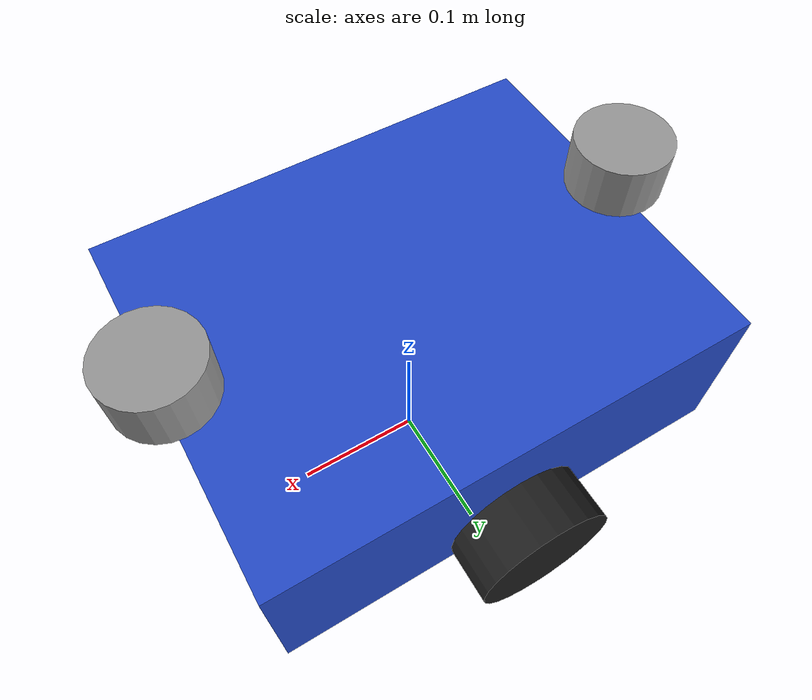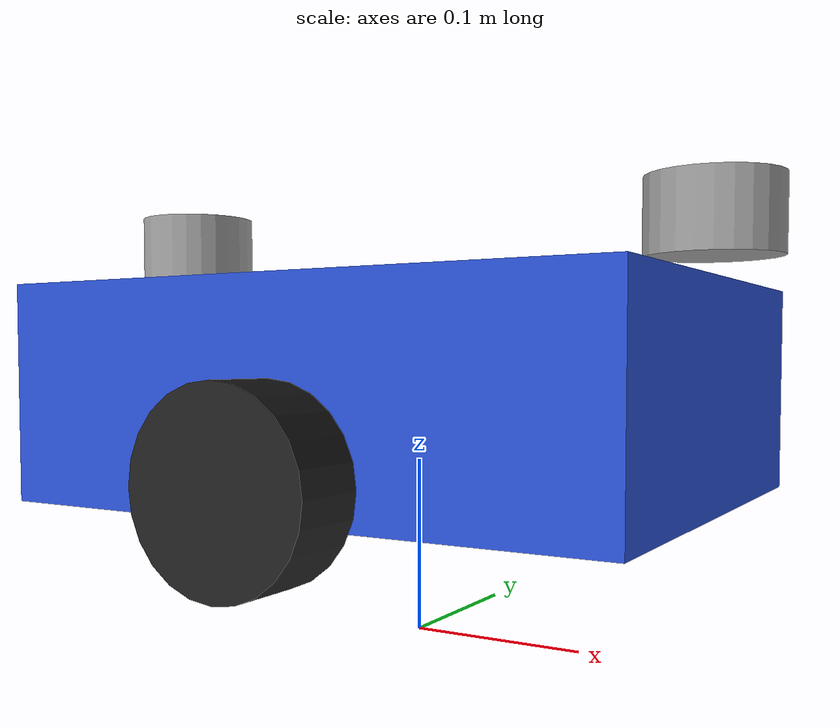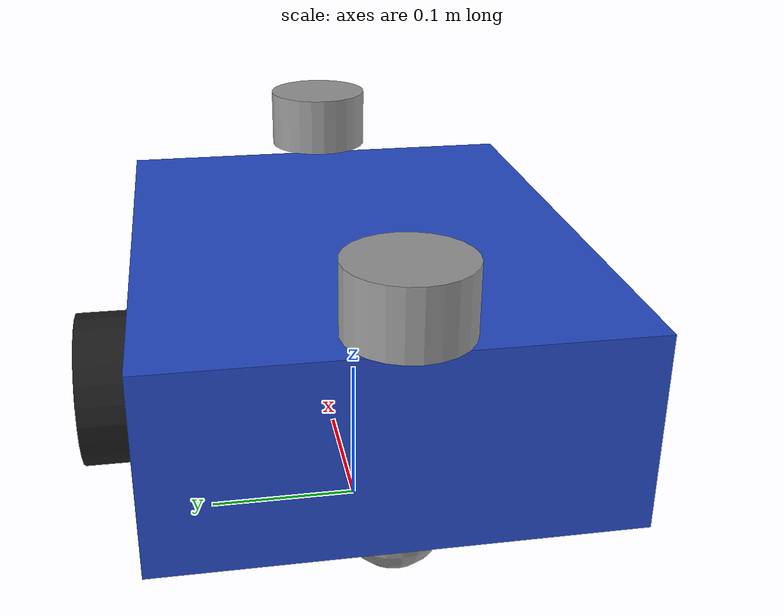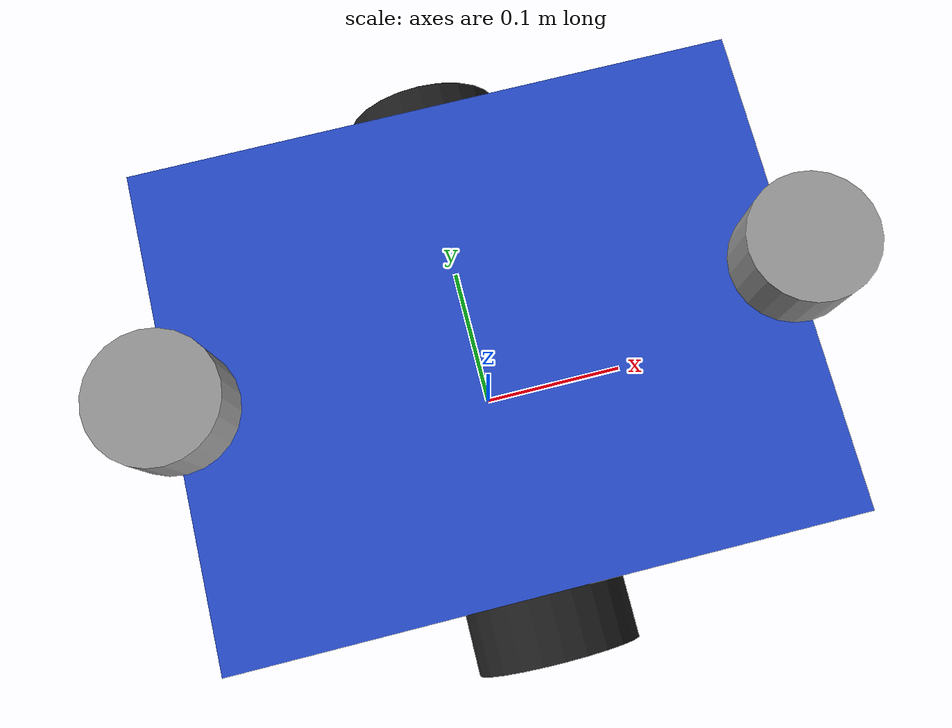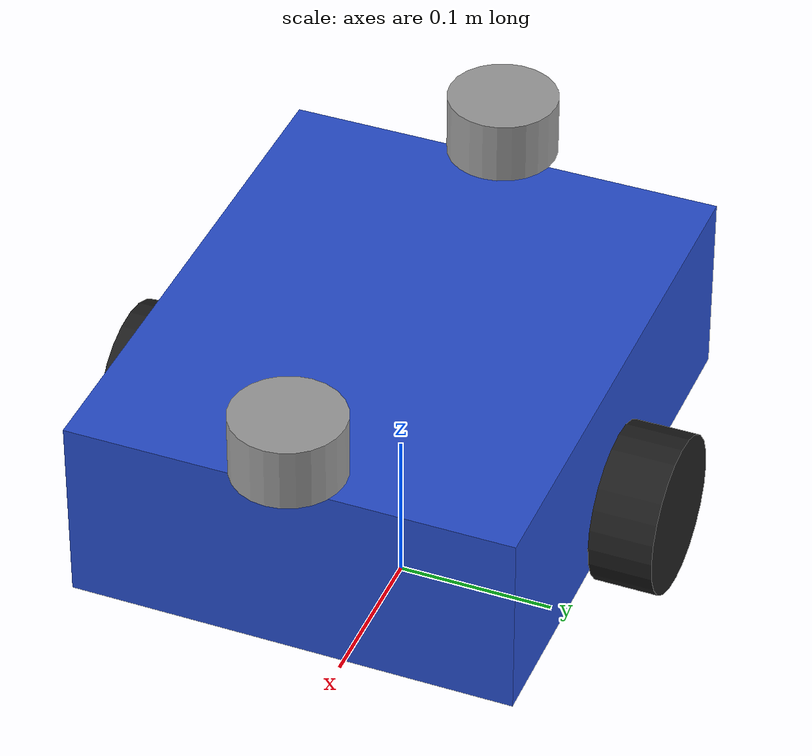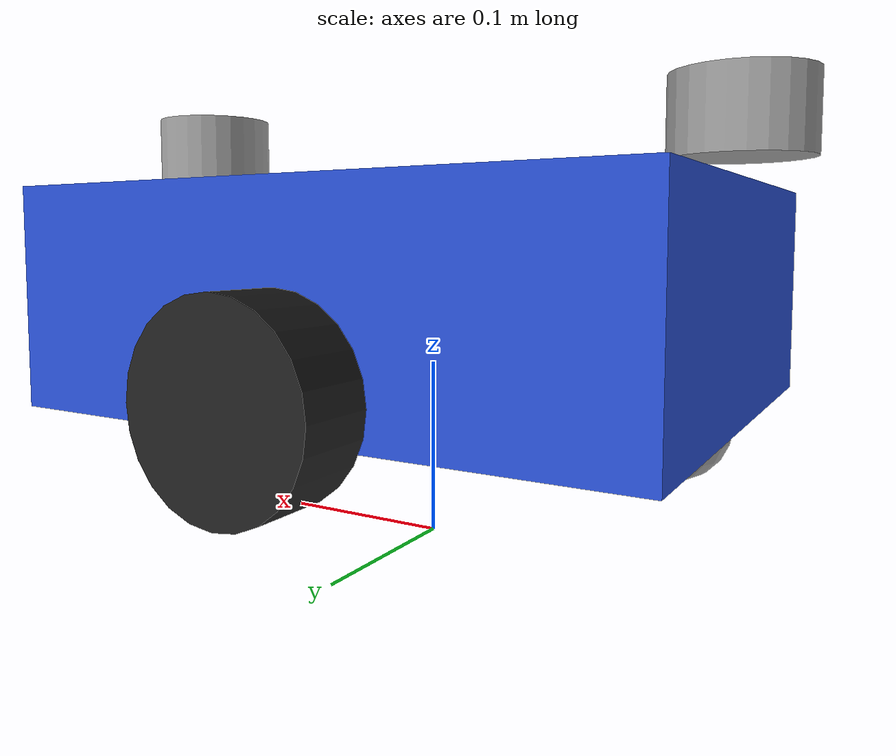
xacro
<?xml version="1.0"?>
<!-- enwbot manipulator -->
<robot xmlns:xacro="http://www.ros.org/wiki/xacro" name="enwbot">

    <!-- Import enwbot urdf file -->
    <xacro:include filename="$(find enwbot_description)/urdf/enwbot.urdf" />

    <!-- Import enwbot materials file -->
    <xacro:include filename="$(find enwbot_description)/config/materials.urdf" />

    <!-- Import enwbot ros2_control description -->
    <xacro:include filename="$(find enwbot_description)/ros2_control/enwbot_safe.ros2_control.urdf" />

</robot>

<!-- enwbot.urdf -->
<robot name="enwbot" xmlns:xacro="http://www.ros.org/wiki/xacro">

  <link name="base_footprint"/>

  <link name="base_link">
    <visual>
      <origin xyz="0 0 0.09" rpy="0 0 0"/>
      <geometry>
        <box size="0.35 0.28 0.12"/>
      </geometry>
      <material name="blue"/>
    </visual>
    <collision>
      <origin xyz="0 0 0.09" rpy="0 0 0"/>
      <geometry>
        <box size="0.35 0.28 0.12"/>
      </geometry>
    </collision>
    <inertial>
      <origin xyz="0 0 0.09" rpy="0 0 0"/>
      <mass value="8.0"/>
      <inertia ixx="0.12" ixy="0.0" ixz="0.0" iyy="0.18" iyz="0.0" izz="0.22"/>
    </inertial>
  </link>

  <joint name="base_footprint_to_base_link" type="fixed">
    <parent link="base_footprint"/>
    <child link="base_link"/>
    <origin xyz="0 0 0.05" rpy="0 0 0"/>
  </joint>

  <link name="left_wheel_link">
    <visual>
      <origin xyz="0 0 0" rpy="1.57079632679 0 0"/>
      <geometry>
        <cylinder radius="0.05" length="0.04"/>
      </geometry>
      <material name="black"/>
    </visual>
    <collision>
      <origin xyz="0 0 0" rpy="1.57079632679 0 0"/>
      <geometry>
        <cylinder radius="0.05" length="0.04"/>
      </geometry>
    </collision>
    <inertial>
      <origin xyz="0 0 0" rpy="0 0 0"/>
      <mass value="0.7"/>
      <inertia ixx="0.001" ixy="0.0" ixz="0.0" iyy="0.001" iyz="0.0" izz="0.001"/>
    </inertial>
  </link>

  <joint name="left_wheel_joint" type="continuous">
    <parent link="base_link"/>
    <child link="left_wheel_link"/>
    <origin xyz="0 0.16 0.05" rpy="0 0 0"/>
    <axis xyz="0 1 0"/>
  </joint>

  <link name="right_wheel_link">
    <visual>
      <origin xyz="0 0 0" rpy="1.57079632679 0 0"/>
      <geometry>
        <cylinder radius="0.05" length="0.04"/>
      </geometry>
      <material name="black"/>
    </visual>
    <collision>
      <origin xyz="0 0 0" rpy="1.57079632679 0 0"/>
      <geometry>
        <cylinder radius="0.05" length="0.04"/>
      </geometry>
    </collision>
    <inertial>
      <origin xyz="0 0 0" rpy="0 0 0"/>
      <mass value="0.7"/>
      <inertia ixx="0.001" ixy="0.0" ixz="0.0" iyy="0.001" iyz="0.0" izz="0.001"/>
    </inertial>
  </link>

  <joint name="right_wheel_joint" type="continuous">
    <parent link="base_link"/>
    <child link="right_wheel_link"/>
    <origin xyz="0 -0.16 0.05" rpy="0 0 0"/>
    <axis xyz="0 1 0"/>
  </joint>

  <link name="caster_wheel_link">
    <visual>
      <origin xyz="0 0 0" rpy="0 0 0"/>
      <geometry>
        <sphere radius="0.03"/>
      </geometry>
      <material name="grey"/>
    </visual>
    <collision>
      <origin xyz="0 0 0" rpy="0 0 0"/>
      <geometry>
        <sphere radius="0.03"/>
      </geometry>
    </collision>
    <inertial>
      <origin xyz="0 0 0" rpy="0 0 0"/>
      <mass value="0.2"/>
      <inertia ixx="0.0002" ixy="0.0" ixz="0.0" iyy="0.0002" iyz="0.0" izz="0.0002"/>
    </inertial>
  </link>

  <joint name="caster_wheel_joint" type="fixed">
    <parent link="base_link"/>
    <child link="caster_wheel_link"/>
    <origin xyz="-0.14 0 0.03" rpy="0 0 0"/>
  </joint>

  <link name="front_lidar_link">
    <visual>
      <origin xyz="0 0 0" rpy="0 0 0"/>
      <geometry>
        <cylinder radius="0.035" length="0.04"/>
      </geometry>
      <material name="grey"/>
    </visual>
    <collision>
      <origin xyz="0 0 0" rpy="0 0 0"/>
      <geometry>
        <cylinder radius="0.035" length="0.04"/>
      </geometry>
    </collision>
    <inertial>
      <origin xyz="0 0 0" rpy="0 0 0"/>
      <mass value="0.1"/>
      <inertia ixx="0.0001" ixy="0.0" ixz="0.0" iyy="0.0001" iyz="0.0" izz="0.0001"/>
    </inertial>
  </link>

  <joint name="front_lidar_joint" type="fixed">
    <parent link="base_link"/>
    <child link="front_lidar_link"/>
    <origin xyz="0.17 0 0.18" rpy="0 0 0"/>
  </joint>

  <link name="rear_lidar_link">
    <visual>
      <origin xyz="0 0 0" rpy="0 0 0"/>
      <geometry>
        <cylinder radius="0.035" length="0.04"/>
      </geometry>
      <material name="grey"/>
    </visual>
    <collision>
      <origin xyz="0 0 0" rpy="0 0 0"/>
      <geometry>
        <cylinder radius="0.035" length="0.04"/>
      </geometry>
    </collision>
    <inertial>
      <origin xyz="0 0 0" rpy="0 0 0"/>
      <mass value="0.1"/>
      <inertia ixx="0.0001" ixy="0.0" ixz="0.0" iyy="0.0001" iyz="0.0" izz="0.0001"/>
    </inertial>
  </link>

  <joint name="rear_lidar_joint" type="fixed">
    <parent link="base_link"/>
    <child link="rear_lidar_link"/>
    <origin xyz="-0.17 0 0.18" rpy="0 0 3.14159265359"/>
  </joint>

</robot>
